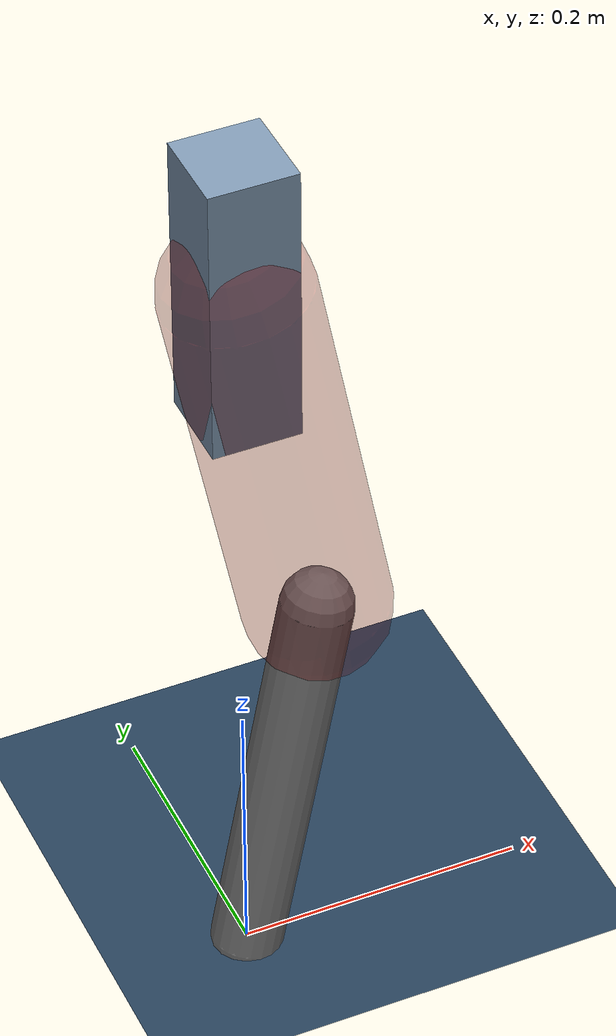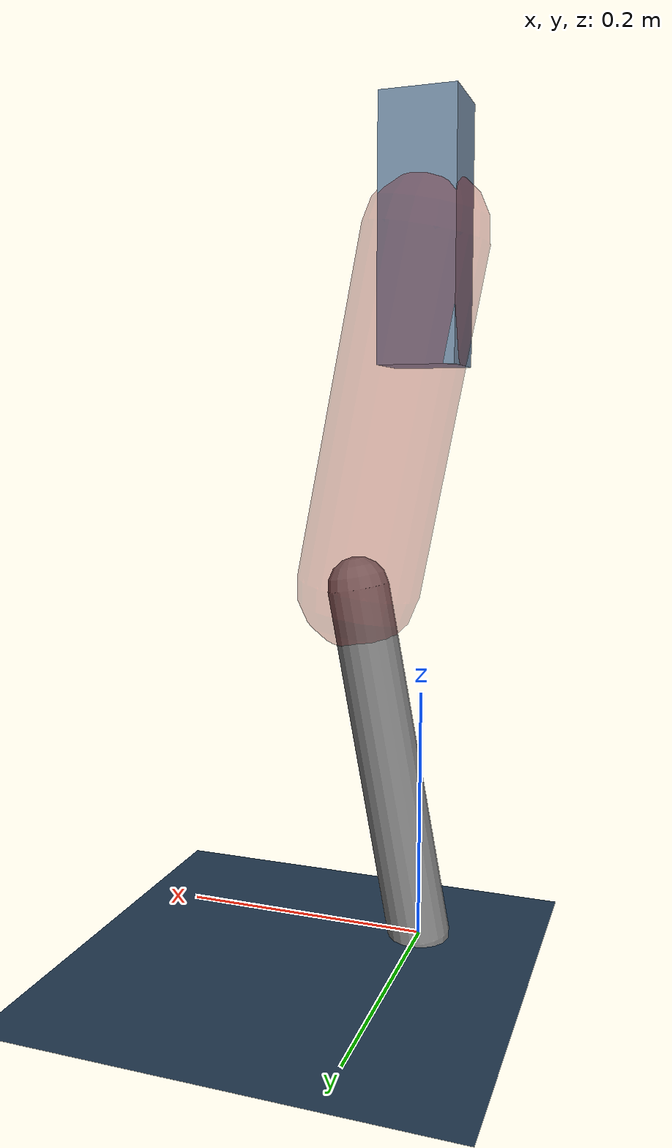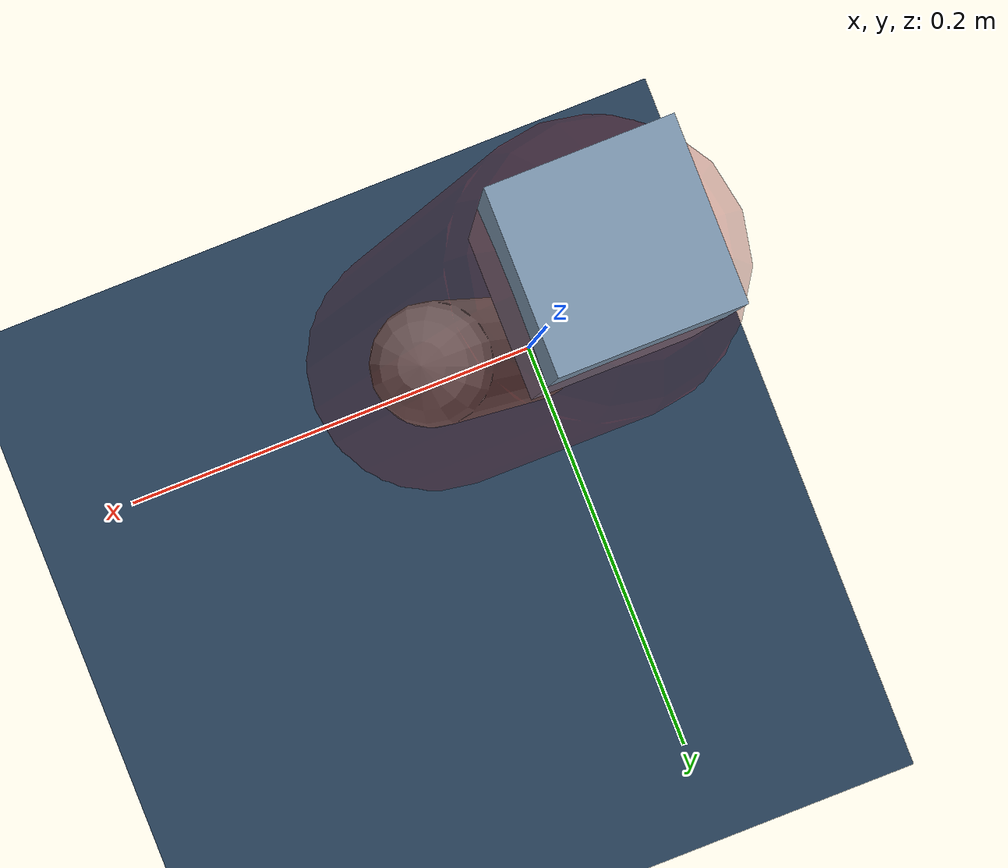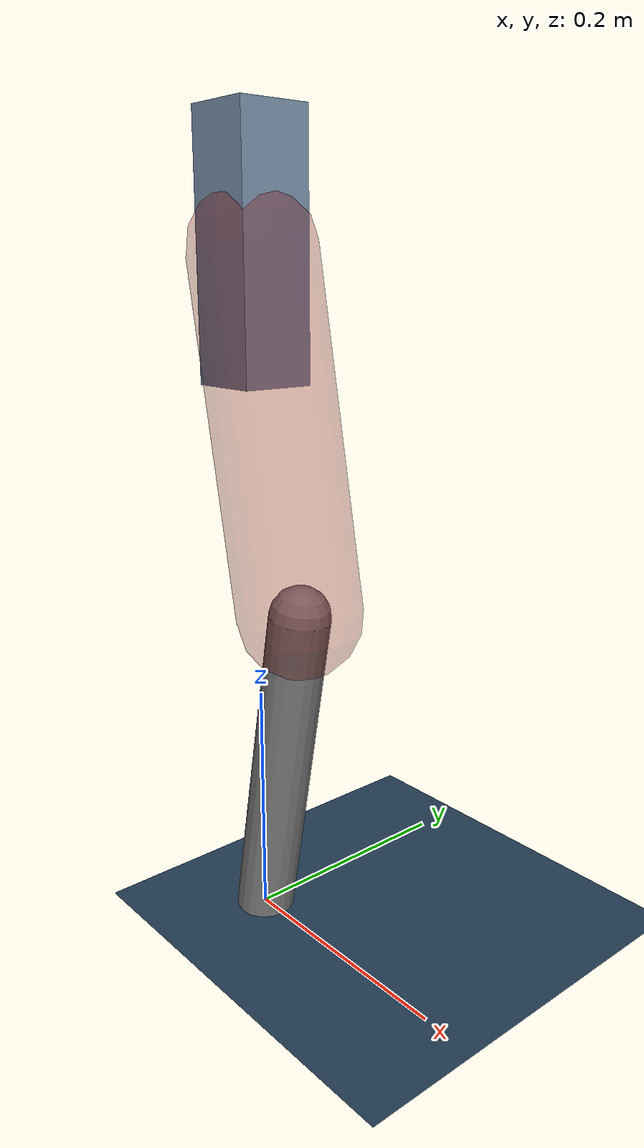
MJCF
<mujoco model="Hopper2D">
	<compiler inertiafromgeom="true" angle="radian" />
	<option timestep="0.001" integrator="implicit" cone="elliptic" solver="Newton" tolerance="1e-10" />

	<default>
		<geom contype="1" conaffinity="1" condim="3" friction="2 0.005 0.0001" solref="0.005 1" />
		<joint limited="true" damping="0.1" />
	</default>

	<asset>
		<texture name="skybox" type="skybox" builtin="gradient" rgb1=".4 .6 .8" rgb2="0 0 0" width="800" height="800" />
		<texture name="grid" type="2d" builtin="checker" rgb1=".1 .2 .3" rgb2=".2 .3 .4" width="300" height="300" mark="edge" markrgb=".2 .3 .4" />
		<material name="ground" texture="grid" texrepeat="1 1" texuniform="true" reflectance="0.1" />
		<material name="leg" rgba="0.5 0.6 0.7 1" />
	</asset>

	<worldbody>

		<geom name="floor" type="plane" size="5 5 0.25" material="ground" />

		<light directional="false" diffuse="0.8 0.8 0.8" specular="0.3 0.3 0.3" pos="0 0 2" dir="0 0 -1" />
		<light mode="targetbodycom" target="base" directional="false" diffuse="0.8 0.8 0.8" specular="0.3 0.3 0.3" pos="0 0 2" dir="0 0 -1" />

		<camera name="fixed" pos="0 -2 1" xyaxes="1 0 0 0 0 1" />
		<camera name="tracking" mode="trackcom" pos="0 -3 1" />

		<body name="root" pos="0 0 0.5579118471540692">
			<joint name="slide_x" type="slide" axis="1 0 0" range="-100 100" />
			<joint name="slide_z" type="slide" axis="0 0 1" range="0 10" />

			<body name="base" pos="0 0 0">
				<geom name="torso" type="box" size="0.03 0.03 0.1" mass="1.639" material="leg" />

				<body name="link1" pos="0 0 0" euler="0 1.3802201623936856 0">
					<joint type="hinge" axis="0 -1 0" pos="0 0 0" name="hinge1" limited="true" range="-3.14 3.14" stiffness="0" damping="0.1" />
					<geom name="thigh" type="capsule" fromto="0 0 0 0.2800438047475851 0 0" size="0.05" rgba="0.5 0 0 0.3" mass="0.9352182728184798" />

					<body name="link2" pos="0.2800438047475851 0 0" euler="0 0.37591147038571393 0">
						<joint type="hinge" axis="0 -1 0" pos="0 0 0" name="hinge2" limited="true" range="-3.14 3.14" stiffness="0" damping="0.1" />
						<geom name="shank" type="capsule" fromto="0 0 0 0.287868042406484 0 0" size="0.025" mass="0.47358123816583564" />

					</body>
				</body>
			</body>
		</body>
	</worldbody>

	<actuator>
		<motor name="torque1" joint="hinge1" ctrlrange="-56.49391722680148 56.49391722680148" ctrllimited="true" gear="1" />
		<motor name="torque2" joint="hinge2" ctrlrange="-30.07354653531796 30.07354653531796" ctrllimited="true" gear="1" />
	</actuator>
</mujoco>
